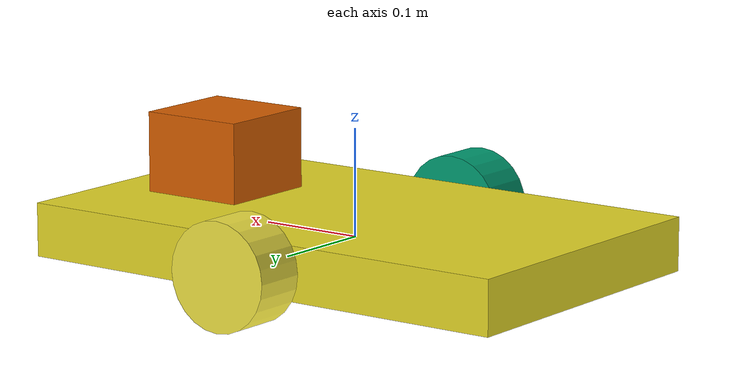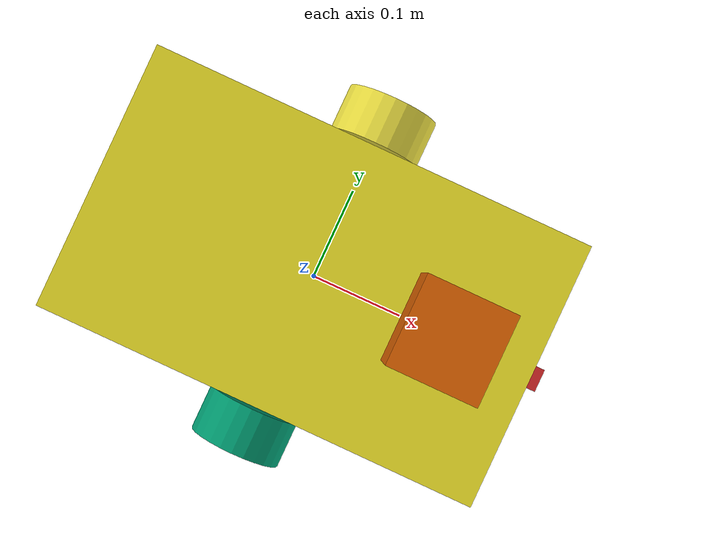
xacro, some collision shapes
<?xml version='1.0'?>

<robot name="my_robot" xmlns:xacro="http://www.ros.org/wiki/xacro">

  <xacro:include filename="$(find my_robot)/urdf/my_robot.gazebo" />

  <link name="robot_footprint"></link>

  <joint name="robot_footprint_joint" type="fixed">
    <origin xyz="0 0 0" rpy="0 0 0" />
    <parent link="robot_footprint"/>
    <child link="chassis" />
  </joint>

  <gazebo reference='chassis'>
    <material>Gazebo/Yellow</material>
  </gazebo>

  <gazebo reference='camera_link'>
    <material>Gazebo/Red</material>
  </gazebo>

  <link name='chassis'>
    <pose>0 0 0.1 0 0 0</pose>

    <inertial>
      <mass value="15.0"/>
      <origin xyz="0.0 0 0" rpy=" 0 0 0"/>
      <inertia
          ixx="0.1" ixy="0" ixz="0"
          iyy="0.1" iyz="0"
          izz="0.1"
      />
    </inertial>

    <collision name='collision'>
      <origin xyz="0 0 0" rpy=" 0 0 0"/>
      <geometry>
        <box size=".5 .3 .05"/>
      </geometry>
    </collision>

    <visual name='chassis_visual'>
      <origin xyz="0 0 0" rpy=" 0 0 0"/>
      <geometry>
        <box size=".5 .3 .05"/>
      </geometry>
    </visual>

    <collision name='back_caster_collision'>
      <origin xyz="-0.15 0 -0.025" rpy=" 0 0 0"/>
      <geometry>
        <sphere radius="0.02499"/>
      </geometry>
    </collision>

    <visual name='back_caster_visual'>
      <origin xyz="-0.15 0 -0.025" rpy=" 0 0 0"/>
      <geometry>
        <sphere radius="0.025"/>
      </geometry>
    </visual>

    <collision name='front_caster_collision'>
      <origin xyz="0.15 0 -0.025" rpy=" 0 0 0"/>
      <geometry>
        <sphere radius="0.02499"/>
      </geometry>
    </collision>

    <visual name='front_caster_visual'>
      <origin xyz="0.15 0 -0.025" rpy=" 0 0 0"/>
      <geometry>
        <sphere radius="0.025"/>
      </geometry>
    </visual>

  </link>

  <link name="right_wheel">

    <inertial>
      <mass value="5"/>
      <origin xyz="0.0 0 0" rpy=" 0 1.5707 1.5707"/>
      <inertia
          ixx="0.1" ixy="0" ixz="0"
          iyy="0.1" iyz="0"
          izz="0.1"
      />
    </inertial>

    <collision name='collision'>
      <origin xyz="0.0 0 0" rpy=" 0 1.5707 1.5707"/>
      <geometry>
        <cylinder radius="0.05" length="0.05"/>
      </geometry>
    </collision>

    <visual name='chassis_visual'>
      <origin xyz="0.0 0 0" rpy=" 0 1.5707 1.5707"/>
      <geometry>
        <cylinder radius="0.05" length="0.05"/>
      </geometry>
    </visual>

  </link>

  <link name="left_wheel">

    <inertial>
      <mass value="5"/>
      <origin xyz="0.0 0 0" rpy=" 0 1.5707 1.5707"/>
      <inertia
          ixx="0.1" ixy="0" ixz="0"
          iyy="0.1" iyz="0"
          izz="0.1"
      />
    </inertial>

    <collision name='collision'>
      <origin xyz="0.0 0 0" rpy=" 0 1.5707 1.5707"/>
      <geometry>
        <cylinder radius="0.05" length="0.05"/>
      </geometry>
    </collision>

    <visual name='chassis_visual'>
      <origin xyz="0.0 0 0" rpy=" 0 1.5707 1.5707"/>
      <geometry>
        <cylinder radius="0.05" length="0.05"/>
      </geometry>
    </visual>

  </link>

  <joint type="continuous" name="right_wheel_hinge">
    <origin xyz="0 -0.175 0" rpy="0 0 0"/>
    <child link="right_wheel"/>
    <parent link="chassis"/>
    <axis xyz="0 1 0" rpy="0 0 0"/>
    <limit effort="10000" velocity="1000"/>
    <dynamics damping="1.0" friction="1.0"/>
  </joint>

  <joint type="continuous" name="left_wheel_hinge">
    <origin xyz="0 0.175 0" rpy="0 0 0"/>
    <child link="left_wheel"/>
    <parent link="chassis"/>
    <axis xyz="0 1 0" rpy="0 0 0"/>
    <limit effort="10000" velocity="1000"/>
    <dynamics damping="1.0" friction="1.0"/>
  </joint>

  <link name="camera_link">

    <inertial>
      <mass value="0.1"/>
      <origin xyz="0.0 0 0" rpy=" 0 0 0"/>
      <inertia
          ixx="1e-6" ixy="0" ixz="0"
          iyy="1e-6" iyz="0"
          izz="1e-6"
      />
    </inertial>

    <collision name='collision'>
      <origin xyz="0 0 0" rpy=" 0 0 0"/>
      <geometry>
        <box size=".025 .025 .025"/>
      </geometry>
    </collision>

    <visual name='camera_visual'>
      <origin xyz="0 0 0" rpy=" 0 0 0"/>
      <geometry>
        <box size=".025 .025 .025"/>
      </geometry>
    </visual>

  </link>

  <joint type="fixed" name="camera_joint">
    <origin xyz="0.25 0 0" rpy="0 0 0"/>
    <child link="camera_link"/>
    <parent link="chassis"/>
    <axis xyz="0 1 0" rpy="0 0 0"/>
  </joint>

  <link name="hokuyo">
    <inertial>
      <mass value="1e-5"/>
      <origin xyz="0 0 0" rpy="0 0 0"/>
      <inertia
          ixx="1e-6" ixy="0" ixz="0"
          iyy="1e-6" iyz="0"
          izz="1e-6"
      />
    </inertial>

    <collision name='collision'>
      <origin xyz="0 0 0" rpy=" 0 0 0"/>
      <geometry>
        <box size=".1 .1 .1"/>
      </geometry>
    </collision>

    <visual name='hokuyo_visual'>
      <origin xyz="0 0 0" rpy=" 0 0 0"/>
      <geometry>
        <mesh filename="package://my_robot/meshes/hokuyo.dae"/>
      </geometry>
    </visual>

  </link>

  <joint type="fixed" name="hokuyo_joint">
    <origin xyz="0.15 0 0.05" rpy="0 0 0"/>
    <child link="hokuyo"/>
    <parent link="chassis"/>
    <axis xyz="0 1 0" rpy="0 0 0"/>
  </joint>

  <joint name="camera_optical_joint" type="fixed">
    <origin xyz="0 0 0" rpy="-1.5707 0 -1.5707"/>
    <parent link="camera_link"/>
    <child link="camera_link_optical"/>
  </joint>

  <link name="camera_link_optical">
  </link>

</robot>
